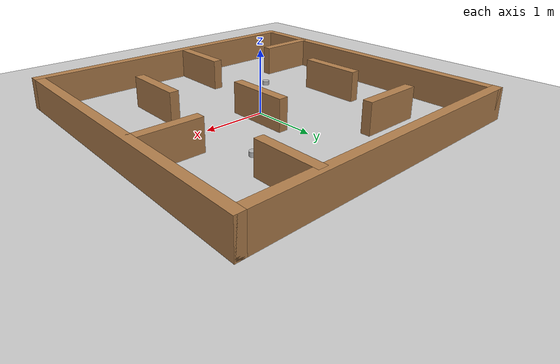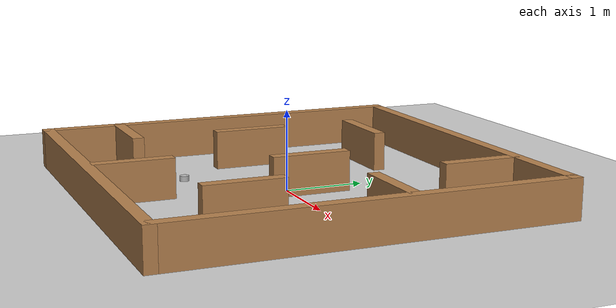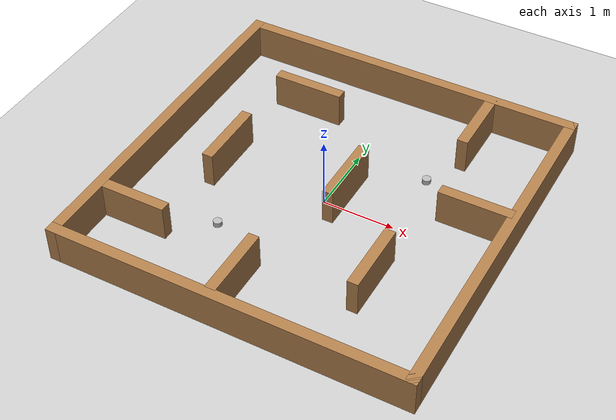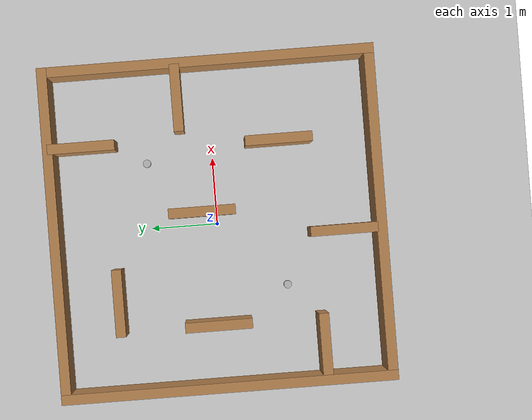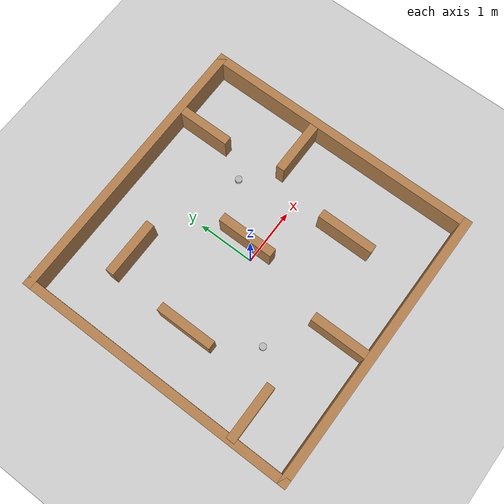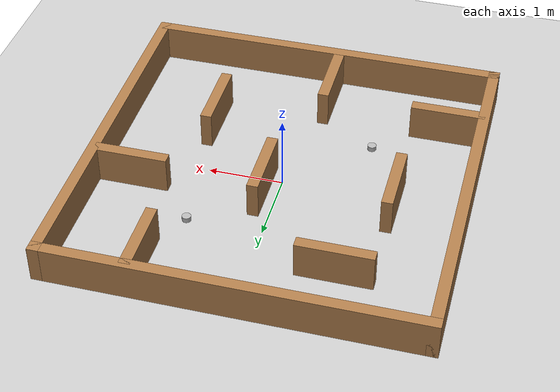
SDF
<sdf version='1.4'>
  <world name='default'>
    <!-- A global light source -->
    <include>
      <uri>model://sun</uri>
    </include>

    <!-- A ground plane with reduced dimensions -->
    <include>
      <uri>model://ground_plane</uri>
      <scale>0.5 0.5 1</scale> <!-- Scale down by half -->
    </include>

    <physics type="ode">
        <!-- Adjust the max step size for faster simulation -->
        <max_step_size>0.015</max_step_size>
        <!-- Adjust the real-time update rate for faster simulation -->
        <real_time_update_rate>1000.0</real_time_update_rate>
        <real_time_factor>15</real_time_factor>
        <ode>
          <solver>
            <type>quick</type>
            <iters>150</iters>
            <precon_iters>0</precon_iters>
            <sor>1.400000</sor>
            <use_dynamic_moi_rescaling>1</use_dynamic_moi_rescaling>
          </solver>
          <constraints>
            <cfm>0.00001</cfm>
            <erp>0.2</erp>
            <contact_max_correcting_vel>2000.000000</contact_max_correcting_vel>
            <contact_surface_layer>0.01000</contact_surface_layer>
          </constraints>
        </ode>
      </physics>

    <!-- Load model -->
    <include>
      <uri>model://turtlebot3_plaza</uri>
    </include>

    <!-- Obstacle 1 with reduced position -->
    <model name="obstacle_1">
      <pose>1 1 0 0 0 0</pose> <!-- Halved position -->
      <link name="link">
        <collision name="collision">
          <geometry>
            <cylinder>
              <radius>0.06</radius> <!-- Halved radius -->
              <length>0.125</length> <!-- Halved length -->
            </cylinder>
          </geometry>
        </collision>
        <visual name="visual">
          <geometry>
            <cylinder>
              <radius>0.06</radius>
              <length>0.125</length>
            </cylinder>
          </geometry>
        </visual>
      </link>
    </model>

    <!-- Obstacle 2 with reduced position -->
    <model name="obstacle_2">
      <pose>-1 -1 0 0 0 0</pose> <!-- Halved position -->
      <link name="link">
        <collision name="collision">
          <geometry>
            <cylinder>
              <radius>0.06</radius> <!-- Halved radius -->
              <length>0.125</length> <!-- Halved length -->
            </cylinder>
          </geometry>
        </collision>
        <visual name="visual">
          <geometry>
            <cylinder>
              <radius>0.06</radius>
              <length>0.125</length>
            </cylinder>
          </geometry>
        </visual>
      </link>
      <plugin name="obstacle_2" filename="libobstacle_2.so"/>
    </model>

    <scene>
      <ambient>0.4 0.4 0.4 1</ambient>
      <background>0.7 0.7 0.7 1</background>
      <shadows>true</shadows>
    </scene>

    <gui fullscreen='0'>
      <camera name='user_camera'>
        <pose>0.0 0.0 8.5 0 1.5708 0</pose> <!-- Adjusted camera position -->
        <view_controller>orbit</view_controller>
      </camera>
    </gui>
  </world>
</sdf>

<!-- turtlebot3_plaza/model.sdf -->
<sdf version='1.6'>
  <model name='turtlebot3_plaza'>
    <pose frame=''>0 0 0 0 -0 0</pose>
    <link name='Wall_0'>
      <collision name='Wall_0_Collision'>
        <geometry>
          <box>
            <size>5 0.15 0.5</size>
          </box>
        </geometry>
        <pose frame=''>0 0 0.25 0 -0 0</pose>
      </collision>
      <visual name='Wall_0_Visual'>
        <pose frame=''>0 0 0.25 0 -0 0</pose>
        <geometry>
          <box>
            <size>5 0.15 0.5</size>
          </box>
        </geometry>
        <material>
          <script>
            <uri>file://media/materials/scripts/gazebo.material</uri>
            <name>Gazebo/Wood</name>
          </script>
          <ambient>1 1 1 1</ambient>
        </material>
      </visual>
      <pose frame=''>-2.425 0 0 0 -0 1.5708</pose>
    </link>
    <link name='Wall_11'>
      <collision name='Wall_11_Collision'>
        <geometry>
          <box>
            <size>1 0.15 0.5</size>
          </box>
        </geometry>
        <pose frame=''>0 0 0.25 0 -0 0</pose>
      </collision>
      <visual name='Wall_11_Visual'>
        <pose frame=''>0 0 0.25 0 -0 0</pose>
        <geometry>
          <box>
            <size>1 0.15 0.5</size>
          </box>
        </geometry>
        <material>
          <script>
            <uri>file://media/materials/scripts/gazebo.material</uri>
            <name>Gazebo/Wood</name>
          </script>
          <ambient>1 1 1 1</ambient>
        </material>
      </visual>
      <pose frame=''>-1.937 -1.467 0 0 -0 0</pose>
    </link>
    <link name='Wall_13'>
      <collision name='Wall_13_Collision'>
        <geometry>
          <box>
            <size>1 0.15 0.5</size>
          </box>
        </geometry>
        <pose frame=''>0 0 0.25 0 -0 0</pose>
      </collision>
      <visual name='Wall_13_Visual'>
        <pose frame=''>0 0 0.25 0 -0 0</pose>
        <geometry>
          <box>
            <size>1 0.15 0.5</size>
          </box>
        </geometry>
        <material>
          <script>
            <uri>file://media/materials/scripts/gazebo.material</uri>
            <name>Gazebo/Wood</name>
          </script>
          <ambient>1 1 1 1</ambient>
        </material>
      </visual>
      <pose frame=''>-0.22 -1.866 0 0 0 -1.5708</pose>
    </link>
    <link name='Wall_15'>
      <collision name='Wall_15_Collision'>
        <geometry>
          <box>
            <size>1 0.15 0.5</size>
          </box>
        </geometry>
        <pose frame=''>0 0 0.25 0 -0 0</pose>
      </collision>
      <visual name='Wall_15_Visual'>
        <pose frame=''>0 0 0.25 0 -0 0</pose>
        <geometry>
          <box>
            <size>1 0.15 0.5</size>
          </box>
        </geometry>
        <material>
          <script>
            <uri>file://media/materials/scripts/gazebo.material</uri>
            <name>Gazebo/Wood</name>
          </script>
          <ambient>1 1 1 1</ambient>
        </material>
      </visual>
      <pose frame=''>1.195 -1.002 0 0 -0 1.5708</pose>
    </link>
    <link name='Wall_17'>
      <collision name='Wall_17_Collision'>
        <geometry>
          <box>
            <size>1 0.15 0.5</size>
          </box>
        </geometry>
        <pose frame=''>0 0 0.25 0 -0 0</pose>
      </collision>
      <visual name='Wall_17_Visual'>
        <pose frame=''>0 0 0.25 0 -0 0</pose>
        <geometry>
          <box>
            <size>1 0.15 0.5</size>
          </box>
        </geometry>
        <material>
          <script>
            <uri>file://media/materials/scripts/gazebo.material</uri>
            <name>Gazebo/Wood</name>
          </script>
          <ambient>1 1 1 1</ambient>
        </material>
      </visual>
      <pose frame=''>1.288 1.93 0 0 0 -1.5708</pose>
    </link>
    <link name='Wall_19'>
      <collision name='Wall_19_Collision'>
        <geometry>
          <box>
            <size>1 0.15 0.5</size>
          </box>
        </geometry>
        <pose frame=''>0 0 0.25 0 -0 0</pose>
      </collision>
      <visual name='Wall_19_Visual'>
        <pose frame=''>0 0 0.25 0 -0 0</pose>
        <geometry>
          <box>
            <size>1 0.15 0.5</size>
          </box>
        </geometry>
        <material>
          <script>
            <uri>file://media/materials/scripts/gazebo.material</uri>
            <name>Gazebo/Wood</name>
          </script>
          <ambient>1 1 1 1</ambient>
        </material>
      </visual>
      <pose frame=''>1.91128 0.4632 0 0 -0 0</pose>
    </link>
    <link name='Wall_2'>
      <collision name='Wall_2_Collision'>
        <geometry>
          <box>
            <size>5 0.15 0.5</size>
          </box>
        </geometry>
        <pose frame=''>0 0 0.25 0 -0 0</pose>
      </collision>
      <visual name='Wall_2_Visual'>
        <pose frame=''>0 0 0.25 0 -0 0</pose>
        <geometry>
          <box>
            <size>5 0.15 0.5</size>
          </box>
        </geometry>
        <material>
          <script>
            <uri>file://media/materials/scripts/gazebo.material</uri>
            <name>Gazebo/Wood</name>
          </script>
          <ambient>1 1 1 1</ambient>
        </material>
      </visual>
      <pose frame=''>0 2.425 0 0 -0 0</pose>
    </link>
    <link name='Wall_21'>
      <collision name='Wall_21_Collision'>
        <geometry>
          <box>
            <size>1 0.15 0.5</size>
          </box>
        </geometry>
        <pose frame=''>0 0 0.25 0 -0 0</pose>
      </collision>
      <visual name='Wall_21_Visual'>
        <pose frame=''>0 0 0.25 0 -0 0</pose>
        <geometry>
          <box>
            <size>1 0.15 0.5</size>
          </box>
        </geometry>
        <material>
          <script>
            <uri>file://media/materials/scripts/gazebo.material</uri>
            <name>Gazebo/Wood</name>
          </script>
          <ambient>1 1 1 1</ambient>
        </material>
      </visual>
      <pose frame=''>0.204 0.215 0 0 0 -1.5708</pose>
    </link>
    <link name='Wall_3'>
      <collision name='Wall_3_Collision'>
        <geometry>
          <box>
            <size>5 0.15 0.5</size>
          </box>
        </geometry>
        <pose frame=''>0 0 0.25 0 -0 0</pose>
      </collision>
      <visual name='Wall_3_Visual'>
        <pose frame=''>0 0 0.25 0 -0 0</pose>
        <geometry>
          <box>
            <size>5 0.15 0.5</size>
          </box>
        </geometry>
        <material>
          <script>
            <uri>file://media/materials/scripts/gazebo.material</uri>
            <name>Gazebo/Wood</name>
          </script>
          <ambient>1 1 1 1</ambient>
        </material>
      </visual>
      <pose frame=''>2.425 0 0 0 0 -1.5708</pose>
    </link>
    <link name='Wall_4'>
      <collision name='Wall_4_Collision'>
        <geometry>
          <box>
            <size>5 0.15 0.5</size>
          </box>
        </geometry>
        <pose frame=''>0 0 0.25 0 -0 0</pose>
      </collision>
      <visual name='Wall_4_Visual'>
        <pose frame=''>0 0 0.25 0 -0 0</pose>
        <geometry>
          <box>
            <size>5 0.15 0.5</size>
          </box>
        </geometry>
        <material>
          <script>
            <uri>file://media/materials/scripts/gazebo.material</uri>
            <name>Gazebo/Wood</name>
          </script>
          <ambient>1 1 1 1</ambient>
        </material>
      </visual>
      <pose frame=''>0 -2.425 0 0 -0 3.14159</pose>
    </link>
    <link name='Wall_7'>
      <collision name='Wall_7_Collision'>
        <geometry>
          <box>
            <size>1 0.15 0.5</size>
          </box>
        </geometry>
        <pose frame=''>0 0 0.25 0 -0 0</pose>
      </collision>
      <visual name='Wall_7_Visual'>
        <pose frame=''>0 0 0.25 0 -0 0</pose>
        <geometry>
          <box>
            <size>1 0.15 0.5</size>
          </box>
        </geometry>
        <material>
          <script>
            <uri>file://media/materials/scripts/gazebo.material</uri>
            <name>Gazebo/Wood</name>
          </script>
          <ambient>1 1 1 1</ambient>
        </material>
      </visual>
      <pose frame=''>-1.064 1.548 0 0 -0 0</pose>
    </link>
    <link name='Wall_9'>
      <collision name='Wall_9_Collision'>
        <geometry>
          <box>
            <size>1 0.15 0.5</size>
          </box>
        </geometry>
        <pose frame=''>0 0 0.25 0 -0 0</pose>
      </collision>
      <visual name='Wall_9_Visual'>
        <pose frame=''>0 0 0.25 0 -0 0</pose>
        <geometry>
          <box>
            <size>1 0.15 0.5</size>
          </box>
        </geometry>
        <material>
          <script>
            <uri>file://media/materials/scripts/gazebo.material</uri>
            <name>Gazebo/Wood</name>
          </script>
          <ambient>1 1 1 1</ambient>
        </material>
      </visual>
      <pose frame=''>-1.502 0.092 0 0 0 -1.5708</pose>
    </link>
    <static>1</static>
  </model>
</sdf>
